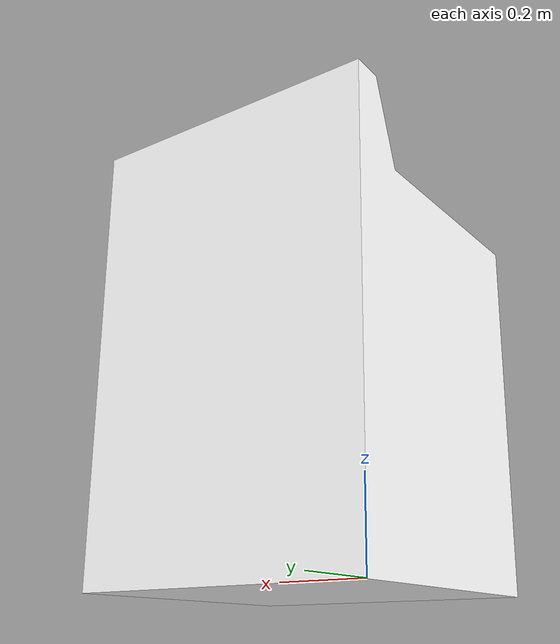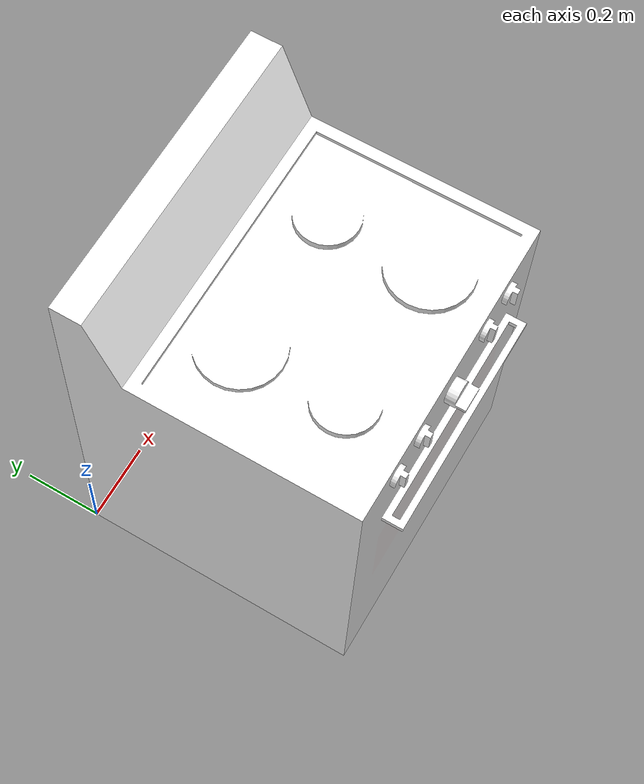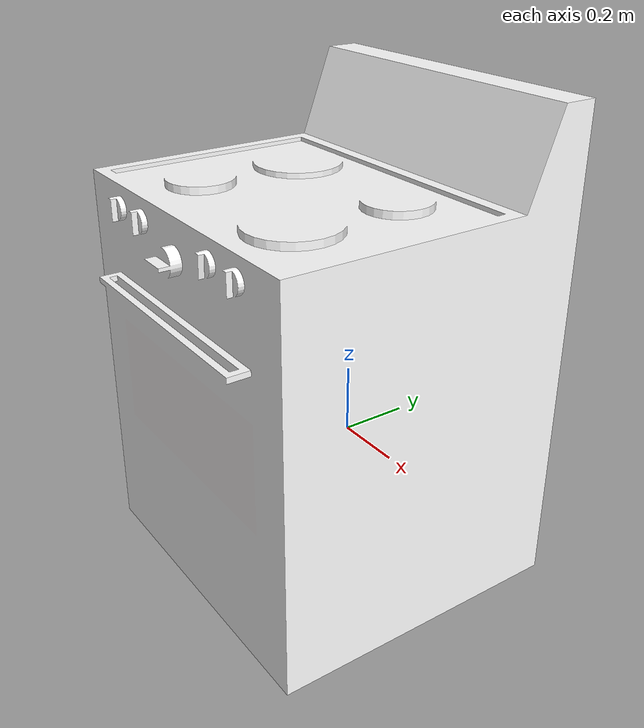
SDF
<?xml version="1.0" ?>
<sdf version="1.5">
  <model name="stove">
    <link name="link">
      <pose>0 0 0 0 0 0</pose>
      <gravity>false</gravity>
      <inertial>
	<mass>20</mass>
      </inertial>
      <visual name="stove">
	<geometry>
	  <mesh>
	    <uri>model://stove/meshes/stove.dae</uri>
	  </mesh>
	</geometry>
      </visual>
      <collision name="stove">
	<geometry>
	  <mesh>
	    <uri>model://stove/meshes/stove.dae</uri>
	  </mesh>
	</geometry>
      </collision>
    </link>
    <static>1</static>
  </model>
</sdf>
